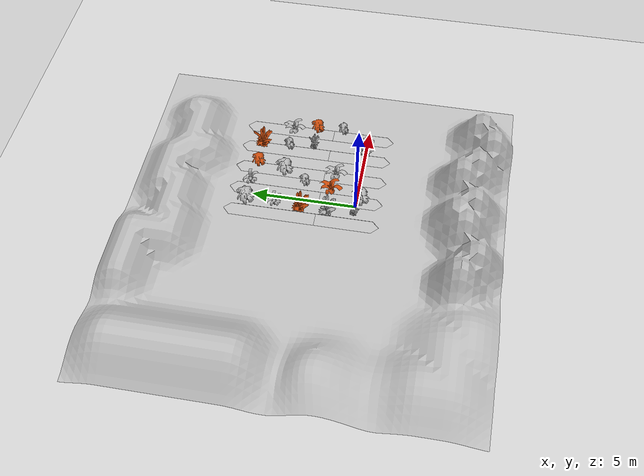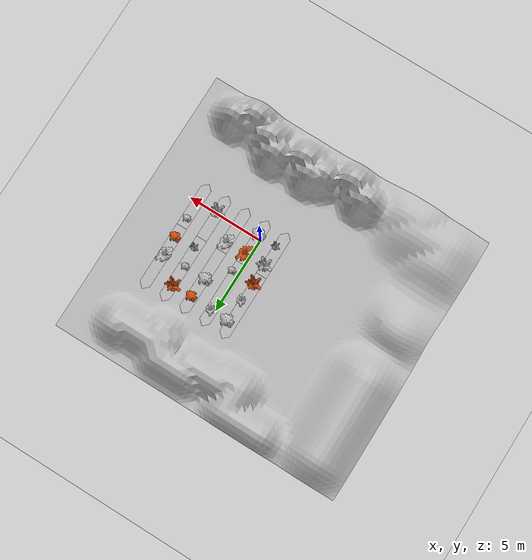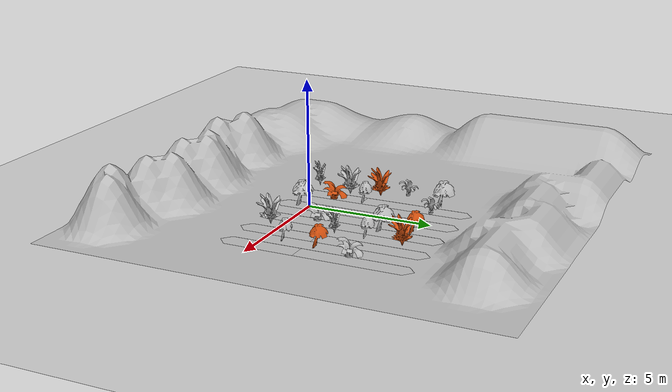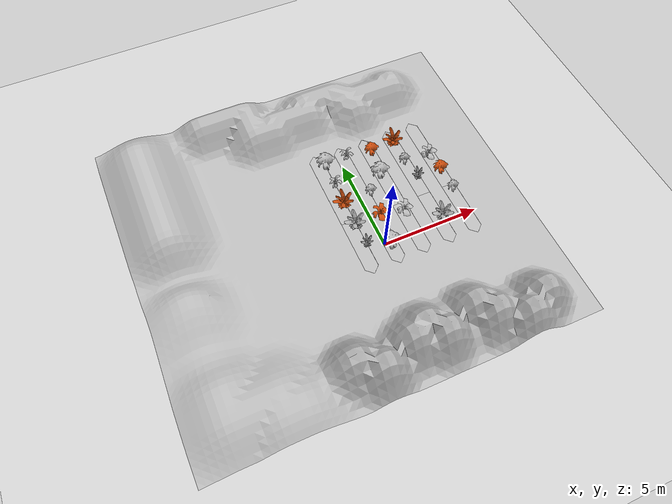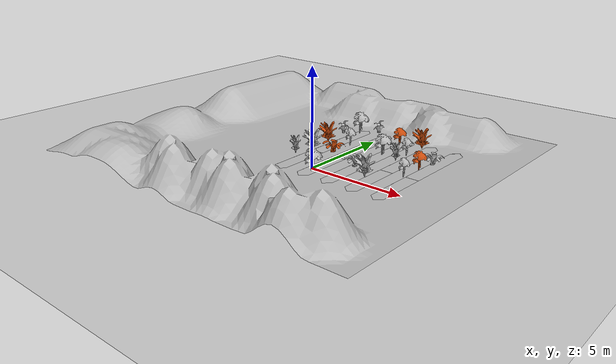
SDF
<sdf version="1.7">
 <world name="default">
  <light name="sun" type="directional">
   <pose>0 0 10 0 -0 0</pose>
   <diffuse>0.8 0.8 0.8 1</diffuse>
   <specular>0.2 0.2 0.2 1</specular>
   <attenuation>
    <range>1000</range>
    <constant>0.9</constant>
    <linear>0.01</linear>
    <quadratic>0.001</quadratic>
   </attenuation>
   <direction>-0.5 0.1 -0.9</direction>
   <spot><inner_angle>0</inner_angle><outer_angle>0</outer_angle><falloff>0</falloff></spot>
  </light>
  <model name="ground_plane">
   <static>1</static>
   <link name="link">
    <collision name="collision">
     <geometry><plane><normal>0 0 1</normal><size>100 100</size></plane></geometry>
     <surface>
      <contact><collide_bitmask>65535</collide_bitmask></contact>
      <friction><ode><mu>100</mu><mu2>50</mu2></ode></friction>
     </surface>
    </collision>
    <visual name="visual">
     <cast_shadows>0</cast_shadows>
     <geometry><plane><normal>0 0 1</normal><size>100 100</size></plane></geometry>
     <material>
      <script><uri>file://media/materials/scripts/gazebo.material</uri><name>Gazebo/Grey</name></script>
     </material>
    </visual>
   </link>
  </model>
  <gravity>0 0 -9.8</gravity>
  <magnetic_field>6e-06 2.3e-05 -4.2e-05</magnetic_field>
  <atmosphere type="adiabatic"/>
  <physics type="ode">
   <max_step_size>0.001</max_step_size>
   <real_time_factor>1</real_time_factor>
   <real_time_update_rate>1000</real_time_update_rate>
  </physics>
  <scene><ambient>0.4 0.4 0.4 1</ambient><background>0.7 0.7 0.7 1</background><shadows>1</shadows></scene>
  <spherical_coordinates>
   <surface_model>EARTH_WGS84</surface_model>
   <latitude_deg>0</latitude_deg>
   <longitude_deg>0</longitude_deg>
   <elevation>0</elevation>
   <heading_deg>0</heading_deg>
  </spherical_coordinates>
  <light name="user_point_light_0" type="point">
   <pose>-0.344741 6.36786 1 0 -0 0</pose>
   <diffuse>0.5 0.5 0.5 1</diffuse>
   <specular>0.1 0.1 0.1 1</specular>
   <attenuation>
    <range>20</range>
    <constant>0.5</constant>
    <linear>0.01</linear>
    <quadratic>0.001</quadratic>
   </attenuation>
   <cast_shadows>0</cast_shadows>
   <direction>0 0 -1</direction>
   <spot><inner_angle>0</inner_angle><outer_angle>0</outer_angle><falloff>0</falloff></spot>
  </light>
  <light name="user_point_light_1" type="point">
   <pose>0.907864 -2.21976 1 0 -0 0</pose>
   <diffuse>0.5 0.5 0.5 1</diffuse>
   <specular>0.1 0.1 0.1 1</specular>
   <attenuation>
    <range>20</range>
    <constant>0.5</constant>
    <linear>0.01</linear>
    <quadratic>0.001</quadratic>
   </attenuation>
   <cast_shadows>0</cast_shadows>
   <direction>0 0 -1</direction>
   <spot><inner_angle>0</inner_angle><outer_angle>0</outer_angle><falloff>0</falloff></spot>
  </light>
  <model name="mud_box">
   <static>1</static>
   <link name="link">
    <collision name="collision"><geometry><box><size>8 10 0.2</size></box></geometry></collision>
    <visual name="visual_1">
     <pose>-2 2.5 0 0 -0 0</pose>
     <cast_shadows>0</cast_shadows>
     <geometry><box><size>4 5 0.2</size></box></geometry>
     <material>
      <script>
       <uri>model://mud_box/materials/scripts</uri>
       <uri>model://mud_box/materials/textures</uri>
       <name>vrc/mud</name>
      </script>
     </material>
    </visual>
    <visual name="visual_2">
     <pose>2 2.5 0 0 -0 0</pose>
     <cast_shadows>0</cast_shadows>
     <geometry><box><size>4 5 0.2</size></box></geometry>
     <material>
      <script>
       <uri>model://mud_box/materials/scripts</uri>
       <uri>model://mud_box/materials/textures</uri>
       <name>vrc/mud</name>
      </script>
     </material>
    </visual>
    <visual name="visual_3">
     <pose>2 -2.5 0 0 -0 0</pose>
     <cast_shadows>0</cast_shadows>
     <geometry><box><size>4 5 0.2</size></box></geometry>
     <material>
      <script>
       <uri>model://mud_box/materials/scripts</uri>
       <uri>model://mud_box/materials/textures</uri>
       <name>vrc/mud</name>
      </script>
     </material>
    </visual>
    <visual name="visual_4">
     <pose>-2 -2.5 0 0 -0 0</pose>
     <cast_shadows>0</cast_shadows>
     <geometry><box><size>4 5 0.2</size></box></geometry>
     <material>
      <script>
       <uri>model://mud_box/materials/scripts</uri>
       <uri>model://mud_box/materials/textures</uri>
       <name>vrc/mud</name>
      </script>
     </material>
    </visual>
   </link>
   <pose>2.10125 1.7831 0 0 -0 0</pose>
  </model>
  <model name="p1_full">
   <link name="link_2">
    <inertial>
     <mass>1</mass>
     <inertia>
      <ixx>0.166667</ixx>
      <ixy>0</ixy>
      <ixz>0</ixz>
      <iyy>0.166667</iyy>
      <iyz>0</iyz>
      <izz>0.166667</izz>
     </inertia>
    </inertial>
    <pose>1e-06 -0 0 0 -0 0</pose>
    <visual name="visual">
     <geometry><mesh><uri>model://p1_full/resource/p1_full.dae</uri><scale>1 1 1</scale></mesh></geometry>
    </visual>
    <collision name="collision">
     <geometry><mesh><uri>model://p1_full/resource/p1_full.dae</uri><scale>1 1 1</scale></mesh></geometry>
     <surface>
      <friction>
       <ode><mu>1</mu><mu2>1</mu2><fdir1>0 0 0</fdir1><slip1>0</slip1><slip2>0</slip2></ode>
       <torsional>
        <coefficient>1</coefficient>
        <patch_radius>0</patch_radius>
        <surface_radius>0</surface_radius>
        <use_patch_radius>1</use_patch_radius>
        <ode><slip>0</slip></ode>
       </torsional>
      </friction>
      <bounce><restitution_coefficient>0</restitution_coefficient><threshold>1e+06</threshold></bounce>
      <contact>
       <collide_without_contact>0</collide_without_contact>
       <collide_without_contact_bitmask>1</collide_without_contact_bitmask>
       <collide_bitmask>1</collide_bitmask>
       <ode>
        <soft_cfm>0</soft_cfm>
        <soft_erp>0.2</soft_erp>
        <kp>1e+13</kp>
        <kd>1</kd>
        <max_vel>0.01</max_vel>
        <min_depth>0</min_depth>
       </ode>
       <bullet>
        <split_impulse>1</split_impulse>
        <split_impulse_penetration_threshold>-0.01</split_impulse_penetration_threshold>
        <soft_cfm>0</soft_cfm>
        <soft_erp>0.2</soft_erp>
        <kp>1e+13</kp>
        <kd>1</kd>
       </bullet>
      </contact>
     </surface>
    </collision>
   </link>
   <static>1</static>
   <pose>-0.391176 2.11763 0.389069 0 -0 0</pose>
  </model>
  <model name="p2_full">
   <link name="link_2">
    <inertial>
     <mass>1</mass>
     <inertia>
      <ixx>0.166667</ixx>
      <ixy>0</ixy>
      <ixz>0</ixz>
      <iyy>0.166667</iyy>
      <iyz>0</iyz>
      <izz>0.166667</izz>
     </inertia>
    </inertial>
    <pose>2e-06 1e-06 0 0 -0 0</pose>
    <visual name="visual">
     <geometry><mesh><uri>model://p2_full/resource/p2_full.dae</uri><scale>1 1 1</scale></mesh></geometry>
    </visual>
    <collision name="collision">
     <geometry><mesh><uri>model://p2_full/resource/p2_full.dae</uri><scale>1 1 1</scale></mesh></geometry>
     <surface>
      <friction>
       <ode><mu>1</mu><mu2>1</mu2><fdir1>0 0 0</fdir1><slip1>0</slip1><slip2>0</slip2></ode>
       <torsional>
        <coefficient>1</coefficient>
        <patch_radius>0</patch_radius>
        <surface_radius>0</surface_radius>
        <use_patch_radius>1</use_patch_radius>
        <ode><slip>0</slip></ode>
       </torsional>
      </friction>
      <bounce><restitution_coefficient>0</restitution_coefficient><threshold>1e+06</threshold></bounce>
      <contact>
       <collide_without_contact>0</collide_without_contact>
       <collide_without_contact_bitmask>1</collide_without_contact_bitmask>
       <collide_bitmask>1</collide_bitmask>
       <ode>
        <soft_cfm>0</soft_cfm>
        <soft_erp>0.2</soft_erp>
        <kp>1e+13</kp>
        <kd>1</kd>
        <max_vel>0.01</max_vel>
        <min_depth>0</min_depth>
       </ode>
       <bullet>
        <split_impulse>1</split_impulse>
        <split_impulse_penetration_threshold>-0.01</split_impulse_penetration_threshold>
        <soft_cfm>0</soft_cfm>
        <soft_erp>0.2</soft_erp>
        <kp>1e+13</kp>
        <kd>1</kd>
       </bullet>
      </contact>
     </surface>
    </collision>
   </link>
   <static>1</static>
   <pose>-0.818298 0.905589 0 0 -0 0</pose>
  </model>
  <model name="p3_full">
   <link name="link_6">
    <inertial>
     <mass>1</mass>
     <inertia>
      <ixx>0.166667</ixx>
      <ixy>0</ixy>
      <ixz>0</ixz>
      <iyy>0.166667</iyy>
      <iyz>0</iyz>
      <izz>0.166667</izz>
     </inertia>
    </inertial>
    <visual name="visual">
     <geometry><mesh><uri>model://p3_full/resource/p3_full.dae</uri><scale>1 1 1</scale></mesh></geometry>
    </visual>
    <collision name="collision">
     <geometry><mesh><uri>model://p3_full/resource/p3_full.dae</uri><scale>1 1 1</scale></mesh></geometry>
     <surface>
      <friction>
       <ode><mu>1</mu><mu2>1</mu2><fdir1>0 0 0</fdir1><slip1>0</slip1><slip2>0</slip2></ode>
       <torsional>
        <coefficient>1</coefficient>
        <patch_radius>0</patch_radius>
        <surface_radius>0</surface_radius>
        <use_patch_radius>1</use_patch_radius>
        <ode><slip>0</slip></ode>
       </torsional>
      </friction>
      <bounce><restitution_coefficient>0</restitution_coefficient><threshold>1e+06</threshold></bounce>
      <contact>
       <collide_without_contact>0</collide_without_contact>
       <collide_without_contact_bitmask>1</collide_without_contact_bitmask>
       <collide_bitmask>1</collide_bitmask>
       <ode>
        <soft_cfm>0</soft_cfm>
        <soft_erp>0.2</soft_erp>
        <kp>1e+13</kp>
        <kd>1</kd>
        <max_vel>0.01</max_vel>
        <min_depth>0</min_depth>
       </ode>
       <bullet>
        <split_impulse>1</split_impulse>
        <split_impulse_penetration_threshold>-0.01</split_impulse_penetration_threshold>
        <soft_cfm>0</soft_cfm>
        <soft_erp>0.2</soft_erp>
        <kp>1e+13</kp>
        <kd>1</kd>
       </bullet>
      </contact>
     </surface>
    </collision>
   </link>
   <static>1</static>
   <pose>3.05852 0.974133 0.410446 0 -0 0</pose>
  </model>
  <model name="p1_small">
   <link name="link_3">
    <inertial>
     <mass>1</mass>
     <inertia>
      <ixx>0.166667</ixx>
      <ixy>0</ixy>
      <ixz>0</ixz>
      <iyy>0.166667</iyy>
      <iyz>0</iyz>
      <izz>0.166667</izz>
     </inertia>
    </inertial>
    <pose>4e-06 -0 0 0 -0 0</pose>
    <visual name="visual">
     <geometry><mesh><uri>model://p1_small/resource/p1_small.dae</uri><scale>1 1 1</scale></mesh></geometry>
    </visual>
    <collision name="collision">
     <geometry><mesh><uri>model://p1_small/resource/p1_small.dae</uri><scale>1 1 1</scale></mesh></geometry>
     <surface>
      <friction>
       <ode><mu>1</mu><mu2>1</mu2><fdir1>0 0 0</fdir1><slip1>0</slip1><slip2>0</slip2></ode>
       <torsional>
        <coefficient>1</coefficient>
        <patch_radius>0</patch_radius>
        <surface_radius>0</surface_radius>
        <use_patch_radius>1</use_patch_radius>
        <ode><slip>0</slip></ode>
       </torsional>
      </friction>
      <bounce><restitution_coefficient>0</restitution_coefficient><threshold>1e+06</threshold></bounce>
      <contact>
       <collide_without_contact>0</collide_without_contact>
       <collide_without_contact_bitmask>1</collide_without_contact_bitmask>
       <collide_bitmask>1</collide_bitmask>
       <ode>
        <soft_cfm>0</soft_cfm>
        <soft_erp>0.2</soft_erp>
        <kp>1e+13</kp>
        <kd>1</kd>
        <max_vel>0.01</max_vel>
        <min_depth>0</min_depth>
       </ode>
       <bullet>
        <split_impulse>1</split_impulse>
        <split_impulse_penetration_threshold>-0.01</split_impulse_penetration_threshold>
        <soft_cfm>0</soft_cfm>
        <soft_erp>0.2</soft_erp>
        <kp>1e+13</kp>
        <kd>1</kd>
       </bullet>
      </contact>
     </surface>
    </collision>
   </link>
   <static>1</static>
   <pose>-1.77838 4.86366 0.777995 0 -0 0</pose>
  </model>
  <model name="p3_small">
   <link name="link_8">
    <inertial>
     <mass>1</mass>
     <inertia>
      <ixx>0.166667</ixx>
      <ixy>0</ixy>
      <ixz>0</ixz>
      <iyy>0.166667</iyy>
      <iyz>0</iyz>
      <izz>0.166667</izz>
     </inertia>
    </inertial>
    <visual name="visual">
     <geometry><mesh><uri>model://p3_small/resource/p3_small.dae</uri><scale>1 1 1</scale></mesh></geometry>
    </visual>
    <collision name="collision">
     <geometry><mesh><uri>model://p3_small/resource/p3_small.dae</uri><scale>1 1 1</scale></mesh></geometry>
     <surface>
      <friction>
       <ode><mu>1</mu><mu2>1</mu2><fdir1>0 0 0</fdir1><slip1>0</slip1><slip2>0</slip2></ode>
       <torsional>
        <coefficient>1</coefficient>
        <patch_radius>0</patch_radius>
        <surface_radius>0</surface_radius>
        <use_patch_radius>1</use_patch_radius>
        <ode><slip>0</slip></ode>
       </torsional>
      </friction>
      <bounce><restitution_coefficient>0</restitution_coefficient><threshold>1e+06</threshold></bounce>
      <contact>
       <collide_without_contact>0</collide_without_contact>
       <collide_without_contact_bitmask>1</collide_without_contact_bitmask>
       <collide_bitmask>1</collide_bitmask>
       <ode>
        <soft_cfm>0</soft_cfm>
        <soft_erp>0.2</soft_erp>
        <kp>1e+13</kp>
        <kd>1</kd>
        <max_vel>0.01</max_vel>
        <min_depth>0</min_depth>
       </ode>
       <bullet>
        <split_impulse>1</split_impulse>
        <split_impulse_penetration_threshold>-0.01</split_impulse_penetration_threshold>
        <soft_cfm>0</soft_cfm>
        <soft_erp>0.2</soft_erp>
        <kp>1e+13</kp>
        <kd>1</kd>
       </bullet>
      </contact>
     </surface>
    </collision>
   </link>
   <static>1</static>
   <pose>-1.02059 -0.632167 0.570175 0 -0 0</pose>
  </model>
  <model name="p2_small">
   <link name="link_3">
    <inertial>
     <mass>1</mass>
     <inertia>
      <ixx>0.166667</ixx>
      <ixy>0</ixy>
      <ixz>0</ixz>
      <iyy>0.166667</iyy>
      <iyz>0</iyz>
      <izz>0.166667</izz>
     </inertia>
    </inertial>
    <visual name="visual">
     <geometry><mesh><uri>model://p2_small/resource/p2_small.dae</uri><scale>1 1 1</scale></mesh></geometry>
    </visual>
    <collision name="collision">
     <geometry><mesh><uri>model://p2_small/resource/p2_small.dae</uri><scale>1 1 1</scale></mesh></geometry>
     <surface>
      <friction>
       <ode><mu>1</mu><mu2>1</mu2><fdir1>0 0 0</fdir1><slip1>0</slip1><slip2>0</slip2></ode>
       <torsional>
        <coefficient>1</coefficient>
        <patch_radius>0</patch_radius>
        <surface_radius>0</surface_radius>
        <use_patch_radius>1</use_patch_radius>
        <ode><slip>0</slip></ode>
       </torsional>
      </friction>
      <bounce><restitution_coefficient>0</restitution_coefficient><threshold>1e+06</threshold></bounce>
      <contact>
       <collide_without_contact>0</collide_without_contact>
       <collide_without_contact_bitmask>1</collide_without_contact_bitmask>
       <collide_bitmask>1</collide_bitmask>
       <ode>
        <soft_cfm>0</soft_cfm>
        <soft_erp>0.2</soft_erp>
        <kp>1e+13</kp>
        <kd>1</kd>
        <max_vel>0.01</max_vel>
        <min_depth>0</min_depth>
       </ode>
       <bullet>
        <split_impulse>1</split_impulse>
        <split_impulse_penetration_threshold>-0.01</split_impulse_penetration_threshold>
        <soft_cfm>0</soft_cfm>
        <soft_erp>0.2</soft_erp>
        <kp>1e+13</kp>
        <kd>1</kd>
       </bullet>
      </contact>
     </surface>
    </collision>
   </link>
   <static>1</static>
   <pose>3.29063 1.44569 0.428075 0 -0 0</pose>
  </model>
  <model name="p1_ws">
   <link name="link_1">
    <inertial>
     <mass>1</mass>
     <inertia>
      <ixx>0.166667</ixx>
      <ixy>0</ixy>
      <ixz>0</ixz>
      <iyy>0.166667</iyy>
      <iyz>0</iyz>
      <izz>0.166667</izz>
     </inertia>
    </inertial>
    <pose>3e-06 -3e-06 -0 0 -0 0</pose>
    <visual name="visual">
     <geometry><mesh><uri>model://p1_ws/resource/p1_ws.dae</uri><scale>1 1 1</scale></mesh></geometry>
    </visual>
    <collision name="collision">
     <geometry><mesh><uri>model://p1_ws/resource/p1_ws.dae</uri><scale>1 1 1</scale></mesh></geometry>
     <surface>
      <friction>
       <ode><mu>1</mu><mu2>1</mu2><fdir1>0 0 0</fdir1><slip1>0</slip1><slip2>0</slip2></ode>
       <torsional>
        <coefficient>1</coefficient>
        <patch_radius>0</patch_radius>
        <surface_radius>0</surface_radius>
        <use_patch_radius>1</use_patch_radius>
        <ode><slip>0</slip></ode>
       </torsional>
      </friction>
      <bounce><restitution_coefficient>0</restitution_coefficient><threshold>1e+06</threshold></bounce>
      <contact>
       <collide_without_contact>0</collide_without_contact>
       <collide_without_contact_bitmask>1</collide_without_contact_bitmask>
       <collide_bitmask>1</collide_bitmask>
       <ode>
        <soft_cfm>0</soft_cfm>
        <soft_erp>0.2</soft_erp>
        <kp>1e+13</kp>
        <kd>1</kd>
        <max_vel>0.01</max_vel>
        <min_depth>0</min_depth>
       </ode>
       <bullet>
        <split_impulse>1</split_impulse>
        <split_impulse_penetration_threshold>-0.01</split_impulse_penetration_threshold>
        <soft_cfm>0</soft_cfm>
        <soft_erp>0.2</soft_erp>
        <kp>1e+13</kp>
        <kd>1</kd>
       </bullet>
      </contact>
     </surface>
    </collision>
   </link>
   <static>1</static>
   <pose>-1.74295 -1.25077 0.791409 0 -0 0</pose>
  </model>
  <model name="p2_ws">
   <link name="link_4">
    <inertial>
     <mass>1</mass>
     <inertia>
      <ixx>0.166667</ixx>
      <ixy>0</ixy>
      <ixz>0</ixz>
      <iyy>0.166667</iyy>
      <iyz>0</iyz>
      <izz>0.166667</izz>
     </inertia>
    </inertial>
    <pose>2e-06 -0 0 0 -0 0</pose>
    <visual name="visual">
     <geometry><mesh><uri>model://p2_ws/resource/p2_ws.dae</uri><scale>1 1 1</scale></mesh></geometry>
    </visual>
    <collision name="collision">
     <geometry><mesh><uri>model://p2_ws/resource/p2_ws.dae</uri><scale>1 1 1</scale></mesh></geometry>
     <surface>
      <friction>
       <ode><mu>1</mu><mu2>1</mu2><fdir1>0 0 0</fdir1><slip1>0</slip1><slip2>0</slip2></ode>
       <torsional>
        <coefficient>1</coefficient>
        <patch_radius>0</patch_radius>
        <surface_radius>0</surface_radius>
        <use_patch_radius>1</use_patch_radius>
        <ode><slip>0</slip></ode>
       </torsional>
      </friction>
      <bounce><restitution_coefficient>0</restitution_coefficient><threshold>1e+06</threshold></bounce>
      <contact>
       <collide_without_contact>0</collide_without_contact>
       <collide_without_contact_bitmask>1</collide_without_contact_bitmask>
       <collide_bitmask>1</collide_bitmask>
       <ode>
        <soft_cfm>0</soft_cfm>
        <soft_erp>0.2</soft_erp>
        <kp>1e+13</kp>
        <kd>1</kd>
        <max_vel>0.01</max_vel>
        <min_depth>0</min_depth>
       </ode>
       <bullet>
        <split_impulse>1</split_impulse>
        <split_impulse_penetration_threshold>-0.01</split_impulse_penetration_threshold>
        <soft_cfm>0</soft_cfm>
        <soft_erp>0.2</soft_erp>
        <kp>1e+13</kp>
        <kd>1</kd>
       </bullet>
      </contact>
     </surface>
    </collision>
   </link>
   <static>1</static>
   <pose>3.31116 1.97509 0.387426 0 -0 0</pose>
  </model>
  <model name="p3_ws">
   <link name="link_7">
    <inertial>
     <mass>1</mass>
     <inertia>
      <ixx>0.166667</ixx>
      <ixy>0</ixy>
      <ixz>0</ixz>
      <iyy>0.166667</iyy>
      <iyz>0</iyz>
      <izz>0.166667</izz>
     </inertia>
    </inertial>
    <visual name="visual">
     <geometry><mesh><uri>model://p3_ws/resource/p3_ws.dae</uri><scale>1 1 1</scale></mesh></geometry>
    </visual>
    <collision name="collision">
     <geometry><mesh><uri>model://p3_ws/resource/p3_ws.dae</uri><scale>1 1 1</scale></mesh></geometry>
     <surface>
      <friction>
       <ode><mu>1</mu><mu2>1</mu2><fdir1>0 0 0</fdir1><slip1>0</slip1><slip2>0</slip2></ode>
       <torsional>
        <coefficient>1</coefficient>
        <patch_radius>0</patch_radius>
        <surface_radius>0</surface_radius>
        <use_patch_radius>1</use_patch_radius>
        <ode><slip>0</slip></ode>
       </torsional>
      </friction>
      <bounce><restitution_coefficient>0</restitution_coefficient><threshold>1e+06</threshold></bounce>
      <contact>
       <collide_without_contact>0</collide_without_contact>
       <collide_without_contact_bitmask>1</collide_without_contact_bitmask>
       <collide_bitmask>1</collide_bitmask>
       <ode>
        <soft_cfm>0</soft_cfm>
        <soft_erp>0.2</soft_erp>
        <kp>1e+13</kp>
        <kd>1</kd>
        <max_vel>0.01</max_vel>
        <min_depth>0</min_depth>
       </ode>
       <bullet>
        <split_impulse>1</split_impulse>
        <split_impulse_penetration_threshold>-0.01</split_impulse_penetration_threshold>
        <soft_cfm>0</soft_cfm>
        <soft_erp>0.2</soft_erp>
        <kp>1e+13</kp>
        <kd>1</kd>
       </bullet>
      </contact>
     </surface>
    </collision>
   </link>
   <static>1</static>
   <pose>-1.07094 2.66615 0.474871 0 -0 0</pose>
  </model>
  <model name="p1_full_0">
   <link name="link_2">
    <inertial>
     <mass>1</mass>
     <inertia>
      <ixx>0.166667</ixx>
      <ixy>0</ixy>
      <ixz>0</ixz>
      <iyy>0.166667</iyy>
      <iyz>0</iyz>
      <izz>0.166667</izz>
     </inertia>
    </inertial>
    <pose>1e-06 -0 0 0 -0 0</pose>
    <visual name="visual">
     <geometry><mesh><uri>model://p1_full/resource/p1_full.dae</uri><scale>1 1 1</scale></mesh></geometry>
    </visual>
    <collision name="collision">
     <geometry><mesh><uri>model://p1_full/resource/p1_full.dae</uri><scale>1 1 1</scale></mesh></geometry>
     <surface>
      <friction>
       <ode><mu>1</mu><mu2>1</mu2><fdir1>0 0 0</fdir1><slip1>0</slip1><slip2>0</slip2></ode>
       <torsional>
        <coefficient>1</coefficient>
        <patch_radius>0</patch_radius>
        <surface_radius>0</surface_radius>
        <use_patch_radius>1</use_patch_radius>
        <ode><slip>0</slip></ode>
       </torsional>
      </friction>
      <bounce><restitution_coefficient>0</restitution_coefficient><threshold>1e+06</threshold></bounce>
      <contact>
       <collide_without_contact>0</collide_without_contact>
       <collide_without_contact_bitmask>1</collide_without_contact_bitmask>
       <collide_bitmask>1</collide_bitmask>
       <ode>
        <soft_cfm>0</soft_cfm>
        <soft_erp>0.2</soft_erp>
        <kp>1e+13</kp>
        <kd>1</kd>
        <max_vel>0.01</max_vel>
        <min_depth>0</min_depth>
       </ode>
       <bullet>
        <split_impulse>1</split_impulse>
        <split_impulse_penetration_threshold>-0.01</split_impulse_penetration_threshold>
        <soft_cfm>0</soft_cfm>
        <soft_erp>0.2</soft_erp>
        <kp>1e+13</kp>
        <kd>1</kd>
       </bullet>
      </contact>
     </surface>
    </collision>
   </link>
   <static>1</static>
   <pose>2.30035 4.6708 0.412942 0 -0 0</pose>
  </model>
  <model name="p3_full_0">
   <link name="link_6">
    <inertial>
     <mass>1</mass>
     <inertia>
      <ixx>0.166667</ixx>
      <ixy>0</ixy>
      <ixz>0</ixz>
      <iyy>0.166667</iyy>
      <iyz>0</iyz>
      <izz>0.166667</izz>
     </inertia>
    </inertial>
    <visual name="visual">
     <geometry><mesh><uri>model://p3_full/resource/p3_full.dae</uri><scale>1 1 1</scale></mesh></geometry>
    </visual>
    <collision name="collision">
     <geometry><mesh><uri>model://p3_full/resource/p3_full.dae</uri><scale>1 1 1</scale></mesh></geometry>
     <surface>
      <friction>
       <ode><mu>1</mu><mu2>1</mu2><fdir1>0 0 0</fdir1><slip1>0</slip1><slip2>0</slip2></ode>
       <torsional>
        <coefficient>1</coefficient>
        <patch_radius>0</patch_radius>
        <surface_radius>0</surface_radius>
        <use_patch_radius>1</use_patch_radius>
        <ode><slip>0</slip></ode>
       </torsional>
      </friction>
      <bounce><restitution_coefficient>0</restitution_coefficient><threshold>1e+06</threshold></bounce>
      <contact>
       <collide_without_contact>0</collide_without_contact>
       <collide_without_contact_bitmask>1</collide_without_contact_bitmask>
       <collide_bitmask>1</collide_bitmask>
       <ode>
        <soft_cfm>0</soft_cfm>
        <soft_erp>0.2</soft_erp>
        <kp>1e+13</kp>
        <kd>1</kd>
        <max_vel>0.01</max_vel>
        <min_depth>0</min_depth>
       </ode>
       <bullet>
        <split_impulse>1</split_impulse>
        <split_impulse_penetration_threshold>-0.01</split_impulse_penetration_threshold>
        <soft_cfm>0</soft_cfm>
        <soft_erp>0.2</soft_erp>
        <kp>1e+13</kp>
        <kd>1</kd>
       </bullet>
      </contact>
     </surface>
    </collision>
   </link>
   <static>1</static>
   <pose>-1.02192 2.22484 0.398945 0 -0 0</pose>
  </model>
  <model name="p3_small_0">
   <link name="link_8">
    <inertial>
     <mass>1</mass>
     <inertia>
      <ixx>0.166667</ixx>
      <ixy>0</ixy>
      <ixz>0</ixz>
      <iyy>0.166667</iyy>
      <iyz>0</iyz>
      <izz>0.166667</izz>
     </inertia>
    </inertial>
    <visual name="visual">
     <geometry><mesh><uri>model://p3_small/resource/p3_small.dae</uri><scale>1 1 1</scale></mesh></geometry>
    </visual>
    <collision name="collision">
     <geometry><mesh><uri>model://p3_small/resource/p3_small.dae</uri><scale>1 1 1</scale></mesh></geometry>
     <surface>
      <friction>
       <ode><mu>1</mu><mu2>1</mu2><fdir1>0 0 0</fdir1><slip1>0</slip1><slip2>0</slip2></ode>
       <torsional>
        <coefficient>1</coefficient>
        <patch_radius>0</patch_radius>
        <surface_radius>0</surface_radius>
        <use_patch_radius>1</use_patch_radius>
        <ode><slip>0</slip></ode>
       </torsional>
      </friction>
      <bounce><restitution_coefficient>0</restitution_coefficient><threshold>1e+06</threshold></bounce>
      <contact>
       <collide_without_contact>0</collide_without_contact>
       <collide_without_contact_bitmask>1</collide_without_contact_bitmask>
       <collide_bitmask>1</collide_bitmask>
       <ode>
        <soft_cfm>0</soft_cfm>
        <soft_erp>0.2</soft_erp>
        <kp>1e+13</kp>
        <kd>1</kd>
        <max_vel>0.01</max_vel>
        <min_depth>0</min_depth>
       </ode>
       <bullet>
        <split_impulse>1</split_impulse>
        <split_impulse_penetration_threshold>-0.01</split_impulse_penetration_threshold>
        <soft_cfm>0</soft_cfm>
        <soft_erp>0.2</soft_erp>
        <kp>1e+13</kp>
        <kd>1</kd>
       </bullet>
      </contact>
     </surface>
    </collision>
   </link>
   <static>1</static>
   <pose>3.02297 1.94831 0.436191 0 -0 0</pose>
  </model>
  <model name="p2_full_0">
   <link name="link_2">
    <inertial>
     <mass>1</mass>
     <inertia>
      <ixx>0.166667</ixx>
      <ixy>0</ixy>
      <ixz>0</ixz>
      <iyy>0.166667</iyy>
      <iyz>0</iyz>
      <izz>0.166667</izz>
     </inertia>
    </inertial>
    <pose>2e-06 1e-06 0 0 -0 0</pose>
    <visual name="visual">
     <geometry><mesh><uri>model://p2_full/resource/p2_full.dae</uri><scale>1 1 1</scale></mesh></geometry>
    </visual>
    <collision name="collision">
     <geometry><mesh><uri>model://p2_full/resource/p2_full.dae</uri><scale>1 1 1</scale></mesh></geometry>
     <surface>
      <friction>
       <ode><mu>1</mu><mu2>1</mu2><fdir1>0 0 0</fdir1><slip1>0</slip1><slip2>0</slip2></ode>
       <torsional>
        <coefficient>1</coefficient>
        <patch_radius>0</patch_radius>
        <surface_radius>0</surface_radius>
        <use_patch_radius>1</use_patch_radius>
        <ode><slip>0</slip></ode>
       </torsional>
      </friction>
      <bounce><restitution_coefficient>0</restitution_coefficient><threshold>1e+06</threshold></bounce>
      <contact>
       <collide_without_contact>0</collide_without_contact>
       <collide_without_contact_bitmask>1</collide_without_contact_bitmask>
       <collide_bitmask>1</collide_bitmask>
       <ode>
        <soft_cfm>0</soft_cfm>
        <soft_erp>0.2</soft_erp>
        <kp>1e+13</kp>
        <kd>1</kd>
        <max_vel>0.01</max_vel>
        <min_depth>0</min_depth>
       </ode>
       <bullet>
        <split_impulse>1</split_impulse>
        <split_impulse_penetration_threshold>-0.01</split_impulse_penetration_threshold>
        <soft_cfm>0</soft_cfm>
        <soft_erp>0.2</soft_erp>
        <kp>1e+13</kp>
        <kd>1</kd>
       </bullet>
      </contact>
     </surface>
    </collision>
   </link>
   <static>1</static>
   <pose>0.459142 4.82006 0 0 -0 0</pose>
  </model>
  <model name="p2_ws_0">
   <link name="link_4">
    <inertial>
     <mass>1</mass>
     <inertia>
      <ixx>0.166667</ixx>
      <ixy>0</ixy>
      <ixz>0</ixz>
      <iyy>0.166667</iyy>
      <iyz>0</iyz>
      <izz>0.166667</izz>
     </inertia>
    </inertial>
    <pose>2e-06 -0 0 0 -0 0</pose>
    <visual name="visual">
     <geometry><mesh><uri>model://p2_ws/resource/p2_ws.dae</uri><scale>1 1 1</scale></mesh></geometry>
    </visual>
    <collision name="collision">
     <geometry><mesh><uri>model://p2_ws/resource/p2_ws.dae</uri><scale>1 1 1</scale></mesh></geometry>
     <surface>
      <friction>
       <ode><mu>1</mu><mu2>1</mu2><fdir1>0 0 0</fdir1><slip1>0</slip1><slip2>0</slip2></ode>
       <torsional>
        <coefficient>1</coefficient>
        <patch_radius>0</patch_radius>
        <surface_radius>0</surface_radius>
        <use_patch_radius>1</use_patch_radius>
        <ode><slip>0</slip></ode>
       </torsional>
      </friction>
      <bounce><restitution_coefficient>0</restitution_coefficient><threshold>1e+06</threshold></bounce>
      <contact>
       <collide_without_contact>0</collide_without_contact>
       <collide_without_contact_bitmask>1</collide_without_contact_bitmask>
       <collide_bitmask>1</collide_bitmask>
       <ode>
        <soft_cfm>0</soft_cfm>
        <soft_erp>0.2</soft_erp>
        <kp>1e+13</kp>
        <kd>1</kd>
        <max_vel>0.01</max_vel>
        <min_depth>0</min_depth>
       </ode>
       <bullet>
        <split_impulse>1</split_impulse>
        <split_impulse_penetration_threshold>-0.01</split_impulse_penetration_threshold>
        <soft_cfm>0</soft_cfm>
        <soft_erp>0.2</soft_erp>
        <kp>1e+13</kp>
        <kd>1</kd>
       </bullet>
      </contact>
     </surface>
    </collision>
   </link>
   <static>1</static>
   <pose>0.605044 4.44632 0.327246 0 -0 0</pose>
  </model>
  <model name="p1_small_0">
   <link name="link_3">
    <inertial>
     <mass>1</mass>
     <inertia>
      <ixx>0.166667</ixx>
      <ixy>0</ixy>
      <ixz>0</ixz>
      <iyy>0.166667</iyy>
      <iyz>0</iyz>
      <izz>0.166667</izz>
     </inertia>
    </inertial>
    <pose>4e-06 -0 0 0 -0 0</pose>
    <visual name="visual">
     <geometry><mesh><uri>model://p1_small/resource/p1_small.dae</uri><scale>1 1 1</scale></mesh></geometry>
    </visual>
    <collision name="collision">
     <geometry><mesh><uri>model://p1_small/resource/p1_small.dae</uri><scale>1 1 1</scale></mesh></geometry>
     <surface>
      <friction>
       <ode><mu>1</mu><mu2>1</mu2><fdir1>0 0 0</fdir1><slip1>0</slip1><slip2>0</slip2></ode>
       <torsional>
        <coefficient>1</coefficient>
        <patch_radius>0</patch_radius>
        <surface_radius>0</surface_radius>
        <use_patch_radius>1</use_patch_radius>
        <ode><slip>0</slip></ode>
       </torsional>
      </friction>
      <bounce><restitution_coefficient>0</restitution_coefficient><threshold>1e+06</threshold></bounce>
      <contact>
       <collide_without_contact>0</collide_without_contact>
       <collide_without_contact_bitmask>1</collide_without_contact_bitmask>
       <collide_bitmask>1</collide_bitmask>
       <ode>
        <soft_cfm>0</soft_cfm>
        <soft_erp>0.2</soft_erp>
        <kp>1e+13</kp>
        <kd>1</kd>
        <max_vel>0.01</max_vel>
        <min_depth>0</min_depth>
       </ode>
       <bullet>
        <split_impulse>1</split_impulse>
        <split_impulse_penetration_threshold>-0.01</split_impulse_penetration_threshold>
        <soft_cfm>0</soft_cfm>
        <soft_erp>0.2</soft_erp>
        <kp>1e+13</kp>
        <kd>1</kd>
       </bullet>
      </contact>
     </surface>
    </collision>
   </link>
   <static>1</static>
   <pose>-3.02287 3.45916 0.854792 0 -0 0</pose>
  </model>
  <model name="p2_small_0">
   <link name="link_3">
    <inertial>
     <mass>1</mass>
     <inertia>
      <ixx>0.166667</ixx>
      <ixy>0</ixy>
      <ixz>0</ixz>
      <iyy>0.166667</iyy>
      <iyz>0</iyz>
      <izz>0.166667</izz>
     </inertia>
    </inertial>
    <visual name="visual">
     <geometry><mesh><uri>model://p2_small/resource/p2_small.dae</uri><scale>1 1 1</scale></mesh></geometry>
    </visual>
    <collision name="collision">
     <geometry><mesh><uri>model://p2_small/resource/p2_small.dae</uri><scale>1 1 1</scale></mesh></geometry>
     <surface>
      <friction>
       <ode><mu>1</mu><mu2>1</mu2><fdir1>0 0 0</fdir1><slip1>0</slip1><slip2>0</slip2></ode>
       <torsional>
        <coefficient>1</coefficient>
        <patch_radius>0</patch_radius>
        <surface_radius>0</surface_radius>
        <use_patch_radius>1</use_patch_radius>
        <ode><slip>0</slip></ode>
       </torsional>
      </friction>
      <bounce><restitution_coefficient>0</restitution_coefficient><threshold>1e+06</threshold></bounce>
      <contact>
       <collide_without_contact>0</collide_without_contact>
       <collide_without_contact_bitmask>1</collide_without_contact_bitmask>
       <collide_bitmask>1</collide_bitmask>
       <ode>
        <soft_cfm>0</soft_cfm>
        <soft_erp>0.2</soft_erp>
        <kp>1e+13</kp>
        <kd>1</kd>
        <max_vel>0.01</max_vel>
        <min_depth>0</min_depth>
       </ode>
       <bullet>
        <split_impulse>1</split_impulse>
        <split_impulse_penetration_threshold>-0.01</split_impulse_penetration_threshold>
        <soft_cfm>0</soft_cfm>
        <soft_erp>0.2</soft_erp>
        <kp>1e+13</kp>
        <kd>1</kd>
       </bullet>
      </contact>
     </surface>
    </collision>
   </link>
   <static>1</static>
   <pose>1.839 3.91991 0.403621 0 -0 0</pose>
  </model>
  <model name="p2_full_1">
   <link name="link_2">
    <inertial>
     <mass>1</mass>
     <inertia>
      <ixx>0.166667</ixx>
      <ixy>0</ixy>
      <ixz>0</ixz>
      <iyy>0.166667</iyy>
      <iyz>0</iyz>
      <izz>0.166667</izz>
     </inertia>
    </inertial>
    <pose>2e-06 1e-06 0 0 -0 0</pose>
    <visual name="visual">
     <geometry><mesh><uri>model://p2_full/resource/p2_full.dae</uri><scale>1 1 1</scale></mesh></geometry>
    </visual>
    <collision name="collision">
     <geometry><mesh><uri>model://p2_full/resource/p2_full.dae</uri><scale>1 1 1</scale></mesh></geometry>
     <surface>
      <friction>
       <ode><mu>1</mu><mu2>1</mu2><fdir1>0 0 0</fdir1><slip1>0</slip1><slip2>0</slip2></ode>
       <torsional>
        <coefficient>1</coefficient>
        <patch_radius>0</patch_radius>
        <surface_radius>0</surface_radius>
        <use_patch_radius>1</use_patch_radius>
        <ode><slip>0</slip></ode>
       </torsional>
      </friction>
      <bounce><restitution_coefficient>0</restitution_coefficient><threshold>1e+06</threshold></bounce>
      <contact>
       <collide_without_contact>0</collide_without_contact>
       <collide_without_contact_bitmask>1</collide_without_contact_bitmask>
       <collide_bitmask>1</collide_bitmask>
       <ode>
        <soft_cfm>0</soft_cfm>
        <soft_erp>0.2</soft_erp>
        <kp>1e+13</kp>
        <kd>1</kd>
        <max_vel>0.01</max_vel>
        <min_depth>0</min_depth>
       </ode>
       <bullet>
        <split_impulse>1</split_impulse>
        <split_impulse_penetration_threshold>-0.01</split_impulse_penetration_threshold>
        <soft_cfm>0</soft_cfm>
        <soft_erp>0.2</soft_erp>
        <kp>1e+13</kp>
        <kd>1</kd>
       </bullet>
      </contact>
     </surface>
    </collision>
   </link>
   <static>1</static>
   <pose>-1.96486 6.2235 0.336617 0 -0 0</pose>
  </model>
  <model name="p3_ws_0">
   <link name="link_7">
    <inertial>
     <mass>1</mass>
     <inertia>
      <ixx>0.166667</ixx>
      <ixy>0</ixy>
      <ixz>0</ixz>
      <iyy>0.166667</iyy>
      <iyz>0</iyz>
      <izz>0.166667</izz>
     </inertia>
    </inertial>
    <visual name="visual">
     <geometry><mesh><uri>model://p3_ws/resource/p3_ws.dae</uri><scale>1 1 1</scale></mesh></geometry>
    </visual>
    <collision name="collision">
     <geometry><mesh><uri>model://p3_ws/resource/p3_ws.dae</uri><scale>1 1 1</scale></mesh></geometry>
     <surface>
      <friction>
       <ode><mu>1</mu><mu2>1</mu2><fdir1>0 0 0</fdir1><slip1>0</slip1><slip2>0</slip2></ode>
       <torsional>
        <coefficient>1</coefficient>
        <patch_radius>0</patch_radius>
        <surface_radius>0</surface_radius>
        <use_patch_radius>1</use_patch_radius>
        <ode><slip>0</slip></ode>
       </torsional>
      </friction>
      <bounce><restitution_coefficient>0</restitution_coefficient><threshold>1e+06</threshold></bounce>
      <contact>
       <collide_without_contact>0</collide_without_contact>
       <collide_without_contact_bitmask>1</collide_without_contact_bitmask>
       <collide_bitmask>1</collide_bitmask>
       <ode>
        <soft_cfm>0</soft_cfm>
        <soft_erp>0.2</soft_erp>
        <kp>1e+13</kp>
        <kd>1</kd>
        <max_vel>0.01</max_vel>
        <min_depth>0</min_depth>
       </ode>
       <bullet>
        <split_impulse>1</split_impulse>
        <split_impulse_penetration_threshold>-0.01</split_impulse_penetration_threshold>
        <soft_cfm>0</soft_cfm>
        <soft_erp>0.2</soft_erp>
        <kp>1e+13</kp>
        <kd>1</kd>
       </bullet>
      </contact>
     </surface>
    </collision>
   </link>
   <static>1</static>
   <pose>2.90155 5.23634 0.328913 0 -0 0</pose>
  </model>
  <model name="p2_small_1">
   <link name="link_3">
    <inertial>
     <mass>1</mass>
     <inertia>
      <ixx>0.166667</ixx>
      <ixy>0</ixy>
      <ixz>0</ixz>
      <iyy>0.166667</iyy>
      <iyz>0</iyz>
      <izz>0.166667</izz>
     </inertia>
    </inertial>
    <visual name="visual">
     <geometry><mesh><uri>model://p2_small/resource/p2_small.dae</uri><scale>1 1 1</scale></mesh></geometry>
    </visual>
    <collision name="collision">
     <geometry><mesh><uri>model://p2_small/resource/p2_small.dae</uri><scale>1 1 1</scale></mesh></geometry>
     <surface>
      <friction>
       <ode><mu>1</mu><mu2>1</mu2><fdir1>0 0 0</fdir1><slip1>0</slip1><slip2>0</slip2></ode>
       <torsional>
        <coefficient>1</coefficient>
        <patch_radius>0</patch_radius>
        <surface_radius>0</surface_radius>
        <use_patch_radius>1</use_patch_radius>
        <ode><slip>0</slip></ode>
       </torsional>
      </friction>
      <bounce><restitution_coefficient>0</restitution_coefficient><threshold>1e+06</threshold></bounce>
      <contact>
       <collide_without_contact>0</collide_without_contact>
       <collide_without_contact_bitmask>1</collide_without_contact_bitmask>
       <collide_bitmask>1</collide_bitmask>
       <ode>
        <soft_cfm>0</soft_cfm>
        <soft_erp>0.2</soft_erp>
        <kp>1e+13</kp>
        <kd>1</kd>
        <max_vel>0.01</max_vel>
        <min_depth>0</min_depth>
       </ode>
       <bullet>
        <split_impulse>1</split_impulse>
        <split_impulse_penetration_threshold>-0.01</split_impulse_penetration_threshold>
        <soft_cfm>0</soft_cfm>
        <soft_erp>0.2</soft_erp>
        <kp>1e+13</kp>
        <kd>1</kd>
       </bullet>
      </contact>
     </surface>
    </collision>
   </link>
   <static>1</static>
   <pose>-0.666787 2.69311 0.682983 0 -0 0</pose>
  </model>
  <model name="land">
   <link name="link_0">
    <inertial>
     <mass>1</mass>
     <inertia>
      <ixx>0.166667</ixx>
      <ixy>0</ixy>
      <ixz>0</ixz>
      <iyy>0.166667</iyy>
      <iyz>0</iyz>
      <izz>0.166667</izz>
     </inertia>
    </inertial>
    <visual name="visual">
     <geometry><mesh><uri>model://land/resource/farm_terrain_big.dae</uri><scale>1 1 1</scale></mesh></geometry>
    </visual>
    <collision name="collision">
     <geometry><mesh><uri>model://land/resource/farm_terrain_big.dae</uri><scale>1 1 1</scale></mesh></geometry>
     <surface>
      <friction>
       <ode><mu>1</mu><mu2>1</mu2><fdir1>0 0 0</fdir1><slip1>0</slip1><slip2>0</slip2></ode>
       <torsional>
        <coefficient>1</coefficient>
        <patch_radius>0</patch_radius>
        <surface_radius>0</surface_radius>
        <use_patch_radius>1</use_patch_radius>
        <ode><slip>0</slip></ode>
       </torsional>
      </friction>
      <bounce><restitution_coefficient>0</restitution_coefficient><threshold>1e+06</threshold></bounce>
      <contact>
       <collide_without_contact>0</collide_without_contact>
       <collide_without_contact_bitmask>1</collide_without_contact_bitmask>
       <collide_bitmask>1</collide_bitmask>
       <ode>
        <soft_cfm>0</soft_cfm>
        <soft_erp>0.2</soft_erp>
        <kp>1e+13</kp>
        <kd>1</kd>
        <max_vel>0.01</max_vel>
        <min_depth>0</min_depth>
       </ode>
       <bullet>
        <split_impulse>1</split_impulse>
        <split_impulse_penetration_threshold>-0.01</split_impulse_penetration_threshold>
        <soft_cfm>0</soft_cfm>
        <soft_erp>0.2</soft_erp>
        <kp>1e+13</kp>
        <kd>1</kd>
       </bullet>
      </contact>
     </surface>
    </collision>
   </link>
   <static>1</static>
   <pose>20.3916 1.78062 -0.597125 0 -0 0</pose>
  </model>
 </world>
</sdf>
